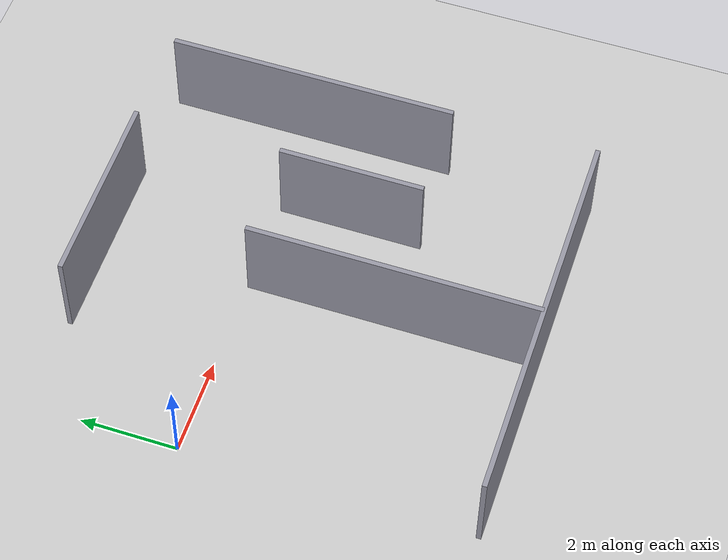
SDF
<sdf version="1.8">
 <world name="semih_world">
  <plugin filename="libignition-gazebo-physics-system.so" name="ignition::gazebo::systems::Physics"/>
  <plugin filename="libignition-gazebo-sensors-system.so" name="ignition::gazebo::systems::Sensors">
   <render_engine>ogre2</render_engine>
  </plugin>
  <plugin filename="libignition-gazebo-user-commands-system.so" name="ignition::gazebo::systems::UserCommands"/>
  <plugin filename="libignition-gazebo-scene-broadcaster-system.so" name="ignition::gazebo::systems::SceneBroadcaster"/>
  <plugin filename="libignition-gazebo-contact-system.so" name="ignition::gazebo::systems::Contact"/>
  <light type="directional" name="sun">
   <pose>0 0 10 0 0 0</pose>
   <diffuse>0.8 0.8 0.8 1</diffuse>
   <specular>0.2 0.2 0.2 1</specular>
   <attenuation>
    <range>1000</range>
    <constant>0.9</constant>
    <linear>0.01</linear>
    <quadratic>0.001</quadratic>
   </attenuation>
   <direction>-0.5 0.1 -0.9</direction>
  </light>
  <model name="ground_plane">
   <static>true</static>
   <link name="link">
    <collision name="collision">
     <geometry><plane><normal>0 0 1</normal><size>100 100</size></plane></geometry>
    </collision>
    <visual name="visual">
     <geometry><plane><normal>0 0 1</normal><size>100 100</size></plane></geometry>
     <material><ambient>0.8 0.8 0.8 1</ambient><diffuse>0.8 0.8 0.8 1</diffuse></material>
    </visual>
   </link>
  </model>
  <model name="maze_wall_1">
   <static>true</static>
   <pose>4 -3 1 0 0 0</pose>
   <link name="link">
    <collision name="collision"><geometry><box><size>0.1 6 2</size></box></geometry></collision>
    <visual name="visual">
     <geometry><box><size>0.1 6 2</size></box></geometry>
     <material><ambient>0.6 0.6 0.65 1</ambient><diffuse>0.6 0.6 0.65 1</diffuse></material>
    </visual>
   </link>
  </model>
  <model name="maze_wall_2">
   <static>true</static>
   <pose>4 3.05 1 0 0 0</pose>
   <link name="link">
    <collision name="collision"><geometry><box><size>4 0.1 2</size></box></geometry></collision>
    <visual name="visual">
     <geometry><box><size>4 0.1 2</size></box></geometry>
     <material><ambient>0.6 0.6 0.65 1</ambient><diffuse>0.6 0.6 0.65 1</diffuse></material>
    </visual>
   </link>
  </model>
  <model name="maze_wall_3">
   <static>true</static>
   <pose>8 0 1 0 0 0</pose>
   <link name="link">
    <collision name="collision"><geometry><box><size>0.1 6 2</size></box></geometry></collision>
    <visual name="visual">
     <geometry><box><size>0.1 6 2</size></box></geometry>
     <material><ambient>0.6 0.6 0.65 1</ambient><diffuse>0.6 0.6 0.65 1</diffuse></material>
    </visual>
   </link>
  </model>
  <model name="maze_wall_4">
   <static>true</static>
   <pose>4 -6 1 0 0 0</pose>
   <link name="link">
    <collision name="collision"><geometry><box><size>8 0.1 2</size></box></geometry></collision>
    <visual name="visual">
     <geometry><box><size>8 0.1 2</size></box></geometry>
     <material><ambient>0.6 0.6 0.65 1</ambient><diffuse>0.6 0.6 0.65 1</diffuse></material>
    </visual>
   </link>
  </model>
  <model name="maze_wall_5">
   <static>true</static>
   <pose>6 -1.5 1 0 0 0</pose>
   <link name="link">
    <collision name="collision"><geometry><box><size>0.1 3 2</size></box></geometry></collision>
    <visual name="visual">
     <geometry><box><size>0.1 3 2</size></box></geometry>
     <material><ambient>0.6 0.6 0.65 1</ambient><diffuse>0.6 0.6 0.65 1</diffuse></material>
    </visual>
   </link>
  </model>
 </world>
</sdf>
